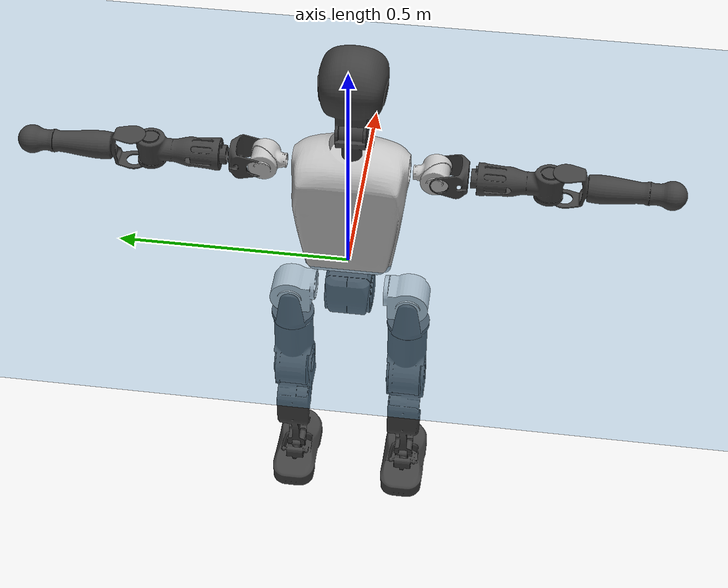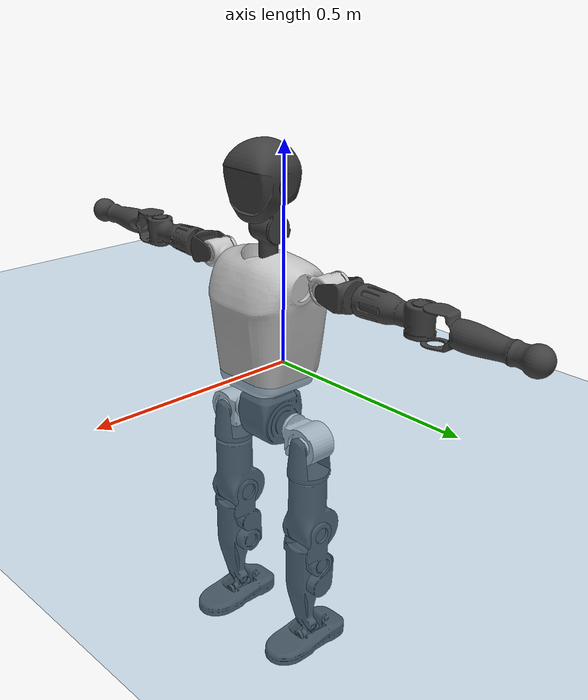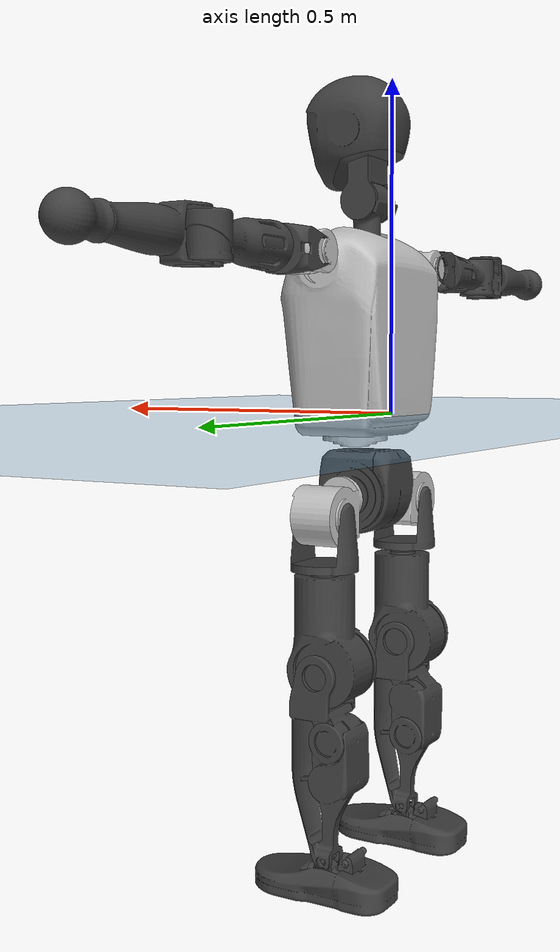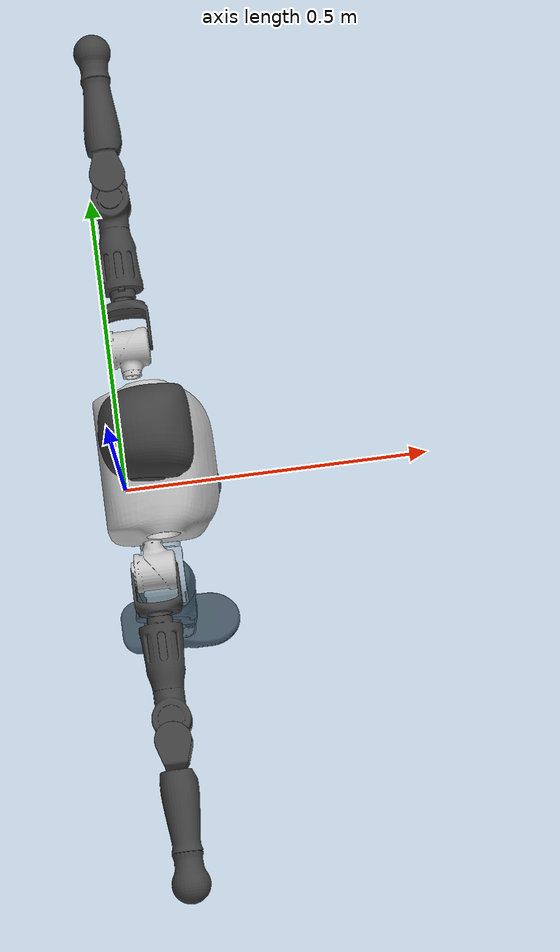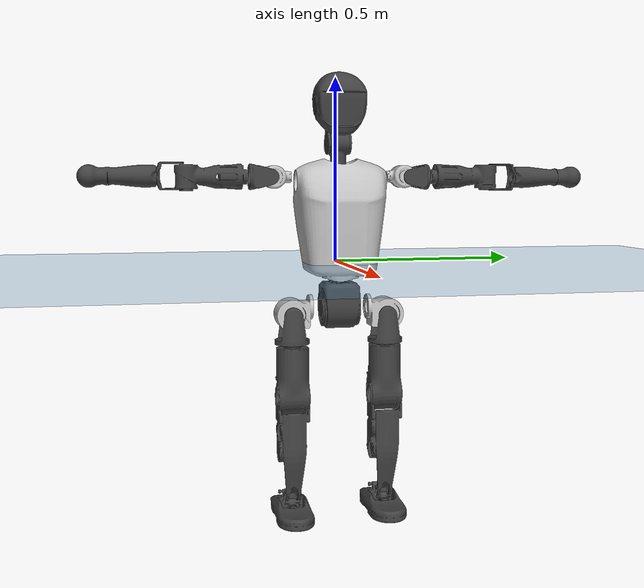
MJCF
<mujoco model="T1">
  <compiler angle="radian" assetdir="assets" balanceinertia="true" inertiafromgeom="false"/>

  <option timestep="0.005" density="1.2" viscosity="2e-05"/>

  <size nkey="1"/>

  <visual>
    <quality shadowsize="8192"/>
    <map shadowclip="0.5"/>
  </visual>

  <default>
    <default class="/">
      <joint armature="0.01" damping="0.01" frictionloss="0.1"/>
      <geom contype="0" conaffinity="0" group="1" solref="-1000 -80"/>
      <site size="0.01 0.005 0.005" group="5"/>
      <general forcelimited="true" biastype="affine" gainprm="25" biasprm="0 -25 -0.6"/>
      <default class="t1">
        <geom rgba="0.25 0.25 0.25 1"/>
        <default class="visual">
          <geom type="mesh" group="2"/>
        </default>
        <default class="collision">
          <geom group="3"/>
        </default>
        <default class="foot">
          <geom size="0.1115 0.05 0.015" type="box" condim="6" group="4" priority="1" solimp="0.015 1 0.015"/>
        </default>
        <default class="reward_collision_sphere">
          <geom group="5" rgba="1 0 0 1"/>
        </default>
      </default>
    </default>
  </default>

  <asset>
    <texture type="skybox" colorspace="auto" name="//unnamed_texture_0" builtin="gradient" rgb1="0.95 0.95 0.95" rgb2="0.95 0.95 0.95" width="100" height="600"/>
    <texture type="2d" colorspace="auto" name="texplane" builtin="checker" rgb1="0.345 0.575 0.748" rgb2="0.345 0.575 0.748" markrgb="1 1 1" width="512" height="512"/>
    <material name="MatPlane" class="/" texture="texplane" texuniform="true" texrepeat="2 2" specular="0.9"/>
    <mesh name="Trunk" class="/" file="Trunk.stl"/>
    <mesh name="H1" class="/" file="H1.stl"/>
    <mesh name="H2" class="/" file="H2.stl"/>
    <mesh name="AL1" class="/" file="AL1.stl"/>
    <mesh name="AL2" class="/" file="AL2.stl"/>
    <mesh name="AL3" class="/" file="AL3.stl"/>
    <mesh name="left_hand_link" class="/" file="left_hand_link.stl"/>
    <mesh name="AR1" class="/" file="AR1.stl"/>
    <mesh name="AR2" class="/" file="AR2.stl"/>
    <mesh name="AR3" class="/" file="AR3.stl"/>
    <mesh name="right_hand_link" class="/" file="right_hand_link.stl"/>
    <mesh name="Waist" class="/" file="Waist.stl"/>
    <mesh name="Hip_Pitch_Left" class="/" file="Hip_Pitch_Left.stl"/>
    <mesh name="Hip_Roll_Left" class="/" file="Hip_Roll_Left.stl"/>
    <mesh name="Hip_Yaw_Left" class="/" file="Hip_Yaw_Left.stl"/>
    <mesh name="Shank_Left" class="/" file="Shank_Left.stl"/>
    <mesh name="Ankle_Cross_Left" class="/" file="Ankle_Cross_Left.stl"/>
    <mesh name="left_foot_link" class="/" file="left_foot_link.stl"/>
    <mesh name="Hip_Pitch_Right" class="/" file="Hip_Pitch_Right.stl"/>
    <mesh name="Hip_Roll_Right" class="/" file="Hip_Roll_Right.stl"/>
    <mesh name="Hip_Yaw_Right" class="/" file="Hip_Yaw_Right.stl"/>
    <mesh name="Shank_Right" class="/" file="Shank_Right.stl"/>
    <mesh name="Ankle_Cross_Right" class="/" file="Ankle_Cross_Right.stl"/>
    <mesh name="right_foot_link" class="/" file="right_foot_link.stl"/>
  </asset>

  <worldbody>
    <geom name="floor" class="/" size="100 100 0.125" type="plane" group="0" material="MatPlane"/>
    <light name="toplight_shadow" class="/" pos="0 0 5" dir="0.0990148 0.0990148 -0.990148" type="directional" ambient="0.04 0.04 0.04" diffuse="0.55 0.55 0.55" specular="0.12 0.12 0.12"/>
    <light name="toplight_fill" class="/" pos="0 0 5" dir="0.0990148 0.0990148 -0.990148" type="directional" castshadow="false" ambient="0.04 0.04 0.04" diffuse="0.3 0.3 0.3" specular="0.08 0.08 0.08"/>
    <body name="trunk" childclass="t1" pos="-0.000115241 0.000636012 0.000832328" quat="1 -7.72802e-05 -0.000117459 9.99199e-05">
      <inertial pos="0.038767 0.00234903 0.11325" quat="0.999942 -0.00636719 -0.0083059 -0.002345" mass="11.7051" diaginertia="0.0153426 0.226065 0.0729772"/>
      <joint name="//unnamed_joint_0" type="free" armature="0" damping="0" frictionloss="0"/>
      <geom name="//unnamed_geom_1" class="visual" rgba="0.76 0.76 0.76 1" mesh="Trunk"/>
      <geom name="//unnamed_geom_2" class="collision" size="0.0748517 0.0998023 0.149703" pos="0.0419954 0 0.126412" type="box"/>
      <geom name="//unnamed_geom_3" class="reward_collision_sphere" size="0.114773" pos="0.0419954 0 0.105344"/>
      <geom name="//unnamed_geom_4" class="reward_collision_sphere" size="0.0149703" pos="0.0419954 0.10546 0"/>
      <geom name="//unnamed_geom_5" class="reward_collision_sphere" size="0.0149703" pos="0.0419954 -0.10546 0"/>
      <geom name="//unnamed_geom_6" class="reward_collision_sphere" size="0.0149703" pos="0.0419954 0.132756 0.189618"/>
      <geom name="//unnamed_geom_7" class="reward_collision_sphere" size="0.0149703" pos="0.0419954 -0.132756 0.189618"/>
      <site name="imu" pos="-0.0037864 -0.000558309 -0.00531038" size="0.00998023"/>
      <camera name="track" pos="0 -2.48142 0" quat="0.707107 0.707107 0 0" mode="trackcom"/>
      <camera name="ego_camera" pos="0.0853907 0 0.442443" quat="-0.5 -0.5 0.5 0.5"/>
      <body name="H1" pos="0.0434603 -0.0026528 0.25801" quat="1 9.33675e-07 -3.46985e-06 4.12051e-06">
        <inertial pos="-0.000878232 0.000804697 0.0612658" quat="0.767622 -0.00329474 -0.00310182 0.640887" mass="0.427617" diaginertia="3.93693e-05 0.000638511 0.000195579"/>
        <joint name="AAHead_yaw" pos="0 0 0" axis="0.00187694 -0.000557129 0.999998" range="-1.56906 1.51883" armature="0.00982986" damping="0.020585" frictionloss="0.0867737"/>
        <geom name="//unnamed_geom_8" class="visual" mesh="H1"/>
        <body name="H2" pos="-0.00145409 0.00049872 0.0625411" quat="1 0.000252488 1.64197e-05 0.00015773">
          <inertial pos="0.00574864 -0.0013074 0.104791" quat="0.987338 0.108464 -0.071675 -0.0908993" mass="0.633183" diaginertia="0.000341906 0.00571064 0.00230464"/>
          <joint name="Head_pitch" pos="0 0 0" axis="0.0050749 -0.999986 -0.00139142" range="-1.23308 0.348821" armature="0.0101002" damping="0.0113656" frictionloss="0.0932502"/>
          <geom name="//unnamed_geom_9" class="visual" mesh="H2"/>
          <geom name="//unnamed_geom_10" class="collision" size="0.0798418" pos="0.00699924 0 0.115878"/>
          <geom name="//unnamed_geom_11" class="reward_collision_sphere" size="0.089822" pos="0.0139985 0 0.105344"/>
        </body>
      </body>
      <body name="AL1" pos="0.0398865 0.13287 0.230671" quat="0.999999 -0.000227082 0.000840526 0.00131725">
        <inertial pos="-0.000474214 0.0555515 3.85807e-05" quat="0.500725 0.488337 -0.504613 0.506129" mass="0.521557" diaginertia="0.000226822 0.00391366 0.000380272"/>
        <joint name="Left_Shoulder_Pitch" pos="0 0 0" axis="5.93804e-05 1 -4.81866e-05" stiffness="0.00396217" range="-3.3312 1.26761" armature="0.0099458" damping="0.0114745" frictionloss="0.0998803"/>
        <geom name="//unnamed_geom_12" class="visual" rgba="0.76 0.76 0.76 1" mesh="AL1"/>
        <body name="AL2" pos="0.000681944 0.0614483 -0.00121368" quat="1 -0.000437113 -0.000114135 0.000346282">
          <inertial pos="0.00535692 0.0496719 0.0005126" quat="0.477024 0.516785 -0.493331 0.511865" mass="0.159781" diaginertia="6.79937e-05 0.00102068 0.000237703"/>
          <joint name="Left_Shoulder_Roll" pos="0 0 0" axis="-0.999995 0.00184966 -0.00261668" stiffness="0.00126553" range="-1.57402 1.73734" armature="0.00932215" damping="0.0109982" frictionloss="0.104728"/>
          <geom name="//unnamed_geom_13" class="visual" mesh="AL2"/>
          <body name="AL3" pos="0.000441091 0.0780413 0.00136111" quat="1 -1.5682e-05 -6.60337e-06 -2.00449e-05">
            <inertial pos="-0.00282401 0.106393 -0.0011381" quat="0.701862 0.712309 0.000869751 -0.00237952" mass="1.06739" diaginertia="0.00225189 0.0382668 0.000817856"/>
            <joint name="Left_Elbow_Pitch" pos="0 0 0" axis="0.000148176 -1 0.000307107" range="-2.28583 2.32108" armature="0.0104864" damping="0.0185774" frictionloss="0.0983853"/>
            <geom name="//unnamed_geom_14" class="visual" mesh="AL3"/>
            <geom name="//unnamed_geom_15" class="collision" size="0.0299407 0.0748517" pos="0 0.0620354 0" quat="0.707105 0.707108 0 0" type="cylinder"/>
            <geom name="//unnamed_geom_16" class="reward_collision_sphere" size="0.0359288"/>
            <body name="left_hand_link" pos="0.000273795 0.185555 -0.00201719" quat="1 0.000287517 3.97244e-05 9.45545e-05">
              <inertial pos="0.000383207 0.13637 0.000904528" quat="0.708569 0.705623 -0.00344809 -0.00379859" mass="0.32278" diaginertia="0.00133361 0.0237965 0.000280716"/>
              <joint name="Left_Elbow_Yaw" pos="0 0 0" axis="-0.00694447 -0.00342581 0.99997" stiffness="0.00954738" range="-2.49663 -0.0122658" armature="0.0101854" damping="0" frictionloss="0.110281"/>
              <geom name="//unnamed_geom_17" class="visual" mesh="left_hand_link"/>
              <geom name="//unnamed_geom_18" class="collision" size="0.0299407 0.087327" pos="0 0.161292 0" quat="0.707105 0.707108 0 0" type="cylinder"/>
              <geom name="//unnamed_geom_19" class="reward_collision_sphere" size="0.0499011"/>
              <geom name="//unnamed_geom_20" class="reward_collision_sphere" size="0.0349308" pos="0 0.136478 0"/>
              <geom name="//unnamed_geom_21" class="reward_collision_sphere" size="0.0349308" pos="0 0.266752 0"/>
            </body>
          </body>
        </body>
      </body>
      <body name="AR1" pos="0.0386291 -0.13117 0.229614" quat="1 0.000324066 0.000438272 -0.000440796">
        <inertial pos="-0.00194423 -0.0558939 -0.00276429" quat="0.501527 0.506573 -0.497294 0.494523" mass="0.539687" diaginertia="0.000228853 0.00378843 0.000385206"/>
        <joint name="Right_Shoulder_Pitch" pos="0 0 0" axis="-0.00072358 -0.999998 -0.00193083" stiffness="0.00763573" range="-1.22638 3.30697" armature="0.00998211" damping="0" frictionloss="0.0863912"/>
        <geom name="//unnamed_geom_22" class="visual" rgba="0.76 0.76 0.76 1" mesh="AR1"/>
        <body name="AR2" pos="-0.00199803 -0.0575946 0.000353658" quat="1 -3.25653e-05 -9.60619e-05 3.49712e-05">
          <inertial pos="0.00189926 -0.0496854 -0.000816058" quat="0.513461 0.476832 -0.514441 0.494307" mass="0.158077" diaginertia="6.74926e-05 0.00100069 0.000230469"/>
          <joint name="Right_Shoulder_Roll" pos="0 0 0" axis="-0.999994 -0.00227319 -0.00246653" stiffness="0.00718287" range="-1.73761 1.57008" armature="0.0100619" damping="0" frictionloss="0.0945158"/>
          <geom name="//unnamed_geom_23" class="visual" mesh="AR2"/>
          <body name="AR3" pos="-0.00140045 -0.0745606 0.000157898" quat="1 0.000329186 9.60494e-05 0.000403422">
            <inertial pos="-0.00124574 -0.105964 0.00095175" quat="0.70666 0.707526 -0.00619933 0.000384454" mass="1.02687" diaginertia="0.00218862 0.0367669 0.000822271"/>
            <joint name="Right_Elbow_Pitch" pos="0 0 0" axis="0.00226518 0.999995 0.00222857" range="-2.26302 2.24811" armature="0.00989952" damping="0.00864684" frictionloss="0.0951759"/>
            <geom name="//unnamed_geom_24" class="visual" mesh="AR3"/>
            <geom name="//unnamed_geom_25" class="collision" size="0.0299407 0.0748517" pos="0 -0.0620354 0" quat="0.707105 0.707108 0 0" type="cylinder"/>
            <geom name="//unnamed_geom_26" class="reward_collision_sphere" size="0.0359288"/>
            <body name="right_hand_link" pos="-0.00149766 -0.180245 0.00229567" quat="1 -0.000122634 -0.000686269 -0.000220008">
              <inertial pos="-0.000273152 -0.134262 0.000209098" quat="0.704128 0.710062 -0.000455141 0.00400317" mass="0.332139" diaginertia="0.00136479 0.0237934 0.00028084"/>
              <joint name="Right_Elbow_Yaw" pos="0 0 0" axis="-0.000952567 -0.00116132 0.999999" range="0.0230703 2.4345" armature="0.00985206" damping="0.00837117" frictionloss="0.113094"/>
              <geom name="//unnamed_geom_27" class="visual" mesh="right_hand_link"/>
              <geom name="//unnamed_geom_28" class="collision" size="0.0299407 0.087327" pos="0 -0.161292 0" quat="0.707105 0.707108 0 0" type="cylinder"/>
              <geom name="//unnamed_geom_29" class="reward_collision_sphere" size="0.0499011"/>
              <geom name="//unnamed_geom_30" class="reward_collision_sphere" size="0.0349308" pos="0 -0.136478 0"/>
              <geom name="//unnamed_geom_31" class="reward_collision_sphere" size="0.0349308" pos="0 -0.266752 0"/>
            </body>
          </body>
        </body>
      </body>
      <body name="Waist" pos="0.0420257 0.000696702 -0.123577" quat="1 -5.22533e-06 2.63077e-06 1.03654e-05">
        <inertial pos="-0.00122024 -0.00152951 0.006743" quat="0.983659 0.000360637 -0.180012 0.00324597" mass="2.47948" diaginertia="0.000862677 0.0153135 0.00603538"/>
        <joint name="Waist" pos="0 0 0" axis="0.00324466 -0.00286914 0.999991" stiffness="0.00186667" range="-1.58356 1.56305" armature="0.0107123" damping="0.0168261" frictionloss="0.1006"/>
        <geom name="//unnamed_geom_32" class="visual" mesh="Waist"/>
        <body name="Hip_Pitch_Left" pos="-0.00051927 0.131191 -0.00201733" quat="1 -0.00032201 5.64805e-06 -9.25261e-05">
          <inertial pos="0.000433424 -0.00718529 -0.0177214" quat="0.975678 0.218877 0.0120562 5.82327e-05" mass="1.04584" diaginertia="0.000302902 0.00435629 0.00161475"/>
          <joint name="Left_Hip_Pitch" pos="0 0 0" axis="-0.00293903 0.999995 0.000609608" stiffness="0.00102619" range="-1.80107 1.6239" armature="0.0112814" damping="0.014816" frictionloss="0.0963669"/>
          <geom name="//unnamed_geom_33" class="visual" rgba="0.76 0.76 0.76 1" mesh="Hip_Pitch_Left"/>
          <body name="Hip_Roll_Left" pos="0.00240924 -0.00113573 -0.0229124" quat="1 0.000347645 0.000127557 0.00014518">
            <inertial pos="0.0007793 -0.000220051 -0.056526" quat="0.700577 -0.00266007 0.00315341 0.713565" mass="0.36668" diaginertia="0.000282085 0.00444675 0.000660552"/>
            <joint name="Left_Hip_Roll" pos="0 0 0" axis="-0.999951 -0.00304621 0.00946085" stiffness="0.00747654" range="-1.56844 0.183333" armature="0.0112785" damping="0.0163287" frictionloss="0.0960981"/>
            <geom name="//unnamed_geom_34" class="visual" mesh="Hip_Roll_Left"/>
            <geom name="//unnamed_geom_35" class="reward_collision_sphere" size="0.0548912"/>
            <body name="Hip_Yaw_Left" pos="-0.00142977 -0.00119997 -0.0840613" quat="1 -0.0001288 0.000102307 -0.000409639">
              <inertial pos="-0.00719855 -0.00126981 -0.0932478" quat="0.69696 -0.0329561 -0.0322778 0.715625" mass="2.17078" diaginertia="0.00428818 0.0715861 0.00333331"/>
              <joint name="Left_Hip_Yaw" pos="0 0 0" axis="-0.00339117 0.00269524 -0.999991" stiffness="0.00326905" range="-1.02422 1.05753" armature="0.00994398" damping="0.00401474" frictionloss="0.101467"/>
              <geom name="//unnamed_geom_36" class="visual" mesh="Hip_Yaw_Left"/>
              <geom name="//unnamed_geom_37" class="collision" size="0.0499011 0.0798418" type="cylinder"/>
              <body name="Shank_Left" pos="-0.00689089 -4.13885e-05 -0.142428" quat="1 4.87672e-05 9.74361e-05 -1.82283e-05">
                <inertial pos="-0.00334562 0.00281391 -0.128546" quat="0.997582 0.00168252 -0.0241182 0.0651522" mass="1.65218" diaginertia="0.0057802 0.10126 0.00236267"/>
                <joint name="Left_Knee_Pitch" pos="0 0 0" axis="-0.00398227 0.999987 -0.00324736" range="0.00129477 2.3409" armature="0.00999674" damping="0.0123024" frictionloss="0.10515"/>
                <geom name="//unnamed_geom_38" class="visual" mesh="Shank_Left"/>
                <geom name="//unnamed_geom_39" class="collision" size="0.0499011 0.0748517" pos="0 0 -0.126412" type="cylinder"/>
                <geom name="//unnamed_geom_40" class="reward_collision_sphere" size="0.0648715"/>
                <body name="Ankle_Cross_Left" pos="-0.000945516 -0.000234117 -0.293031" quat="1 5.31647e-05 4.54583e-06 0.000121674">
                  <inertial pos="-0.00229933 0.00192675 -0.00778897" quat="0.451392 0.546288 0.548588 0.443696" mass="0.0745909" diaginertia="5.02189e-06 7.4356e-05 1.47103e-05"/>
                  <joint name="Left_Ankle_Pitch" pos="0 0 0" axis="-9.46883e-05 1 -8.88751e-05" range="-0.816605 0.332926" armature="0.00980072" damping="0.0147983" frictionloss="0.0950253"/>
                  <geom name="//unnamed_geom_41" class="visual" mesh="Ankle_Cross_Left"/>
                  <body name="left_foot_link" pos="0.000945962 -0.00159921 -0.0106134" quat="1 1.7756e-06 -4.35978e-05 -1.36843e-05">
                    <inertial pos="-0.00217989 -0.000204804 -0.011843" quat="0.00129324 0.624304 0.000408002 0.78118" mass="0.663568" diaginertia="0.000425117 0.00686451 0.00284045"/>
                    <joint name="Left_Ankle_Roll" pos="0 0 0" axis="-1 -0.000309005 0.000254088" range="-0.430123 0.439399" armature="0.0101378" damping="0.0156885" frictionloss="0.099687"/>
                    <geom name="//unnamed_geom_42" class="visual" mesh="left_foot_link"/>
                    <geom name="left_foot" class="foot" size="0.104416 0.0484183 0.0153424" pos="0.00699924 0 -0.0158015"/>
                    <geom name="//unnamed_geom_44" class="reward_collision_sphere" size="0.0518972" pos="0.00699924 0 -0.0158015"/>
                    <geom name="//unnamed_geom_45" class="reward_collision_sphere" size="0.0299407" pos="0.0664928 -0.0285363 -0.0158015"/>
                    <geom name="//unnamed_geom_46" class="reward_collision_sphere" size="0.0299407" pos="-0.0489947 -0.0285363 -0.0158015"/>
                    <site name="left_foot" class="foot" pos="0.00699924 0 -0.0158015" size="0.00998023"/>
                  </body>
                </body>
              </body>
            </body>
          </body>
        </body>
        <body name="Hip_Pitch_Right" pos="-0.000245139 -0.132391 0.000200385" quat="0.999999 0.000562062 -0.000243118 0.000850908">
          <inertial pos="-0.00185845 0.0102822 -0.016338" quat="0.974515 -0.223884 0.0138201 -0.00247984" mass="1.03528" diaginertia="0.000309677 0.00444529 0.00159904"/>
          <joint name="Right_Hip_Pitch" pos="0 0 0" axis="-0.000715477 -0.999999 0.00153066" range="-1.56943 1.74539" armature="0.00923857" damping="0.0108649" frictionloss="0.0991364"/>
          <geom name="//unnamed_geom_47" class="visual" rgba="0.76 0.76 0.76 1" mesh="Hip_Pitch_Right"/>
          <body name="Hip_Roll_Right" pos="0.00226058 0.000573203 -0.0230221" quat="1 -0.00029244 -0.000177045 0.00021572">
            <inertial pos="0.00110467 -0.000972944 -0.0551685" quat="0.709557 -0.0153527 0.00287696 0.704475" mass="0.387556" diaginertia="0.000293597 0.00461724 0.000672186"/>
            <joint name="Right_Hip_Roll" pos="0 0 0" axis="-0.99999 -0.00141626 -0.00426764" stiffness="0.000671897" range="-0.148714 1.59433" armature="0.0100844" damping="0.00879886" frictionloss="0.102175"/>
            <geom name="//unnamed_geom_48" class="visual" mesh="Hip_Roll_Right"/>
            <geom name="//unnamed_geom_49" class="reward_collision_sphere" size="0.0548912"/>
            <body name="Hip_Yaw_Right" pos="0.000759166 0.00100809 -0.0874132" quat="1 -2.13003e-05 -0.000258162 -0.000424885">
              <inertial pos="-0.00462372 -0.00101058 -0.0967104" quat="0.715237 -0.0325486 -0.0374182 0.69712" mass="2.10317" diaginertia="0.00430098 0.0742833 0.00328155"/>
              <joint name="Right_Hip_Yaw" pos="0 0 0" axis="-0.000986132 -0.0154608 -0.99988" stiffness="0.00353226" range="-1.01128 0.987055" armature="0.0111838" damping="0" frictionloss="0.100402"/>
              <geom name="//unnamed_geom_50" class="visual" mesh="Hip_Yaw_Right"/>
              <geom name="//unnamed_geom_51" class="collision" size="0.0499011 0.0798418" type="cylinder"/>
              <body name="Shank_Right" pos="-0.00925239 -0.000542892 -0.139235" quat="1 0.000358986 0.000144519 -9.07368e-05">
                <inertial pos="-0.00409653 -0.00107655 -0.131386" quat="0.99926 -0.000585957 -0.0234765 -0.0304673" mass="1.84143" diaginertia="0.00618199 0.105179 0.00261591"/>
                <joint name="Right_Knee_Pitch" pos="0 0 0" axis="0.0041825 -0.999988 0.00239181" stiffness="0.000284076" range="-2.28813 -0.0131346" armature="0.011279" damping="0.0148341" frictionloss="0.0991515"/>
                <geom name="//unnamed_geom_52" class="visual" mesh="Shank_Right"/>
                <geom name="//unnamed_geom_53" class="collision" size="0.0499011 0.0748517" pos="0 0 -0.126412" type="cylinder"/>
                <geom name="//unnamed_geom_54" class="reward_collision_sphere" size="0.0648715"/>
                <body name="Ankle_Cross_Right" pos="-0.000426309 -0.00146791 -0.295884" quat="1 3.14398e-05 0.000251413 -5.36996e-05">
                  <inertial pos="-0.00242826 -0.00100049 -0.00851157" quat="0.443299 0.551797 0.552338 0.440373" mass="0.0725307" diaginertia="4.99361e-06 7.72479e-05 1.4763e-05"/>
                  <joint name="Right_Ankle_Pitch" pos="0 0 0" axis="-2.57908e-05 -0.999997 0.00228993" range="-0.398629 0.819008" armature="0.0100387" damping="0.0080598" frictionloss="0.104941"/>
                  <geom name="//unnamed_geom_55" class="visual" mesh="Ankle_Cross_Right"/>
                  <body name="right_foot_link" pos="0.00277988 -0.000715131 -0.0136473" quat="1 -1.51358e-05 -5.04459e-05 -7.58484e-05">
                    <inertial pos="-0.00276004 0.000832601 -0.00947147" quat="-0.000753643 0.621655 -0.000323696 0.783291" mass="0.686409" diaginertia="0.000457356 0.00688216 0.0028677"/>
                    <joint name="Right_Ankle_Roll" pos="0 0 0" axis="-0.999983 0.00349055 0.00467179" range="-0.49209 0.439685" armature="0.00988207" damping="0" frictionloss="0.0972099"/>
                    <geom name="//unnamed_geom_56" class="visual" mesh="right_foot_link"/>
                    <geom name="right_foot" class="foot" size="0.102518 0.0456323 0.0151053" pos="0.00699924 0 -0.0158015"/>
                    <geom name="//unnamed_geom_58" class="reward_collision_sphere" size="0.0399209"/>
                    <geom name="//unnamed_geom_59" class="reward_collision_sphere" size="0.0299407" pos="0.00699924 0 -0.0158015"/>
                    <geom name="//unnamed_geom_60" class="reward_collision_sphere" size="0.0299407" pos="0.0664928 0.0285363 -0.0158015"/>
                    <geom name="//unnamed_geom_61" class="reward_collision_sphere" size="0.0299407" pos="-0.0489947 0.0285363 -0.0158015"/>
                    <site name="right_foot" class="foot" pos="0.00699924 0 -0.0158015" size="0.00998023"/>
                  </body>
                </body>
              </body>
            </body>
          </body>
        </body>
      </body>
    </body>
  </worldbody>

  <contact>
    <pair class="/" geom1="floor" geom2="left_foot" name="//unnamed_contact_0"/>
    <pair class="/" geom1="floor" geom2="right_foot" name="//unnamed_contact_1"/>
  </contact>

  <actuator>
    <general name="AAHead_yaw" class="/" joint="AAHead_yaw" forcerange="-6.71816 6.71816" gainprm="23.7853" biasprm="0 -23.7853 -0.592771"/>
    <general name="Head_pitch" class="/" joint="Head_pitch" forcerange="-6.94108 6.94108" gainprm="23.7853" biasprm="0 -23.7853 -0.592771"/>
    <general name="Left_Shoulder_Pitch" class="/" joint="Left_Shoulder_Pitch" forcerange="-17.2503 17.2503" gainprm="23.7853" biasprm="0 -23.7853 -0.592771"/>
    <general name="Left_Shoulder_Roll" class="/" joint="Left_Shoulder_Roll" forcerange="-18.4445 18.4445" gainprm="23.7853" biasprm="0 -23.7853 -0.592771"/>
    <general name="Left_Elbow_Pitch" class="/" joint="Left_Elbow_Pitch" forcerange="-18.1941 18.1941" gainprm="23.7853" biasprm="0 -23.7853 -0.592771"/>
    <general name="Left_Elbow_Yaw" class="/" joint="Left_Elbow_Yaw" forcerange="-18.7107 18.7107" gainprm="23.7853" biasprm="0 -23.7853 -0.592771"/>
    <general name="Right_Shoulder_Pitch" class="/" joint="Right_Shoulder_Pitch" forcerange="-17.5175 17.5175" gainprm="23.7853" biasprm="0 -23.7853 -0.592771"/>
    <general name="Right_Shoulder_Roll" class="/" joint="Right_Shoulder_Roll" forcerange="-17.5424 17.5424" gainprm="23.7853" biasprm="0 -23.7853 -0.592771"/>
    <general name="Right_Elbow_Pitch" class="/" joint="Right_Elbow_Pitch" forcerange="-19.7644 19.7644" gainprm="23.7853" biasprm="0 -23.7853 -0.592771"/>
    <general name="Right_Elbow_Yaw" class="/" joint="Right_Elbow_Yaw" forcerange="-17.3238 17.3238" gainprm="23.7853" biasprm="0 -23.7853 -0.592771"/>
    <general name="Waist" class="/" joint="Waist" forcerange="-29.4715 29.4715" gainprm="23.7853" biasprm="0 -23.7853 -0.592771"/>
    <general name="Left_Hip_Pitch" class="/" joint="Left_Hip_Pitch" forcerange="-45.5848 45.5848" gainprm="23.7853" biasprm="0 -23.7853 -0.592771"/>
    <general name="Left_Hip_Roll" class="/" joint="Left_Hip_Roll" forcerange="-32.169 32.169" gainprm="23.7853" biasprm="0 -23.7853 -0.592771"/>
    <general name="Left_Hip_Yaw" class="/" joint="Left_Hip_Yaw" forcerange="-27.4557 27.4557" gainprm="23.7853" biasprm="0 -23.7853 -0.592771"/>
    <general name="Left_Knee_Pitch" class="/" joint="Left_Knee_Pitch" forcerange="-58.4436 58.4436" gainprm="23.7853" biasprm="0 -23.7853 -0.592771"/>
    <general name="Left_Ankle_Pitch" class="/" joint="Left_Ankle_Pitch" forcerange="-20.1051 20.1051" gainprm="23.7853" biasprm="0 -23.7853 -0.592771"/>
    <general name="Left_Ankle_Roll" class="/" joint="Left_Ankle_Roll" forcerange="-16.3741 16.3741" gainprm="23.7853" biasprm="0 -23.7853 -0.592771"/>
    <general name="Right_Hip_Pitch" class="/" joint="Right_Hip_Pitch" forcerange="-44.9418 44.9418" gainprm="23.7853" biasprm="0 -23.7853 -0.592771"/>
    <general name="Right_Hip_Roll" class="/" joint="Right_Hip_Roll" forcerange="-29.8639 29.8639" gainprm="23.7853" biasprm="0 -23.7853 -0.592771"/>
    <general name="Right_Hip_Yaw" class="/" joint="Right_Hip_Yaw" forcerange="-32.9967 32.9967" gainprm="23.7853" biasprm="0 -23.7853 -0.592771"/>
    <general name="Right_Knee_Pitch" class="/" joint="Right_Knee_Pitch" forcerange="-59.6875 59.6875" gainprm="23.7853" biasprm="0 -23.7853 -0.592771"/>
    <general name="Right_Ankle_Pitch" class="/" joint="Right_Ankle_Pitch" forcerange="-20.6978 20.6978" gainprm="23.7853" biasprm="0 -23.7853 -0.592771"/>
    <general name="Right_Ankle_Roll" class="/" joint="Right_Ankle_Roll" forcerange="-14.4556 14.4556" gainprm="23.7853" biasprm="0 -23.7853 -0.592771"/>
  </actuator>

  <sensor>
    <gyro site="imu" name="imu_angular_velocity"/>
    <velocimeter site="imu" name="imu_linear_velocity"/>
    <framelinvel objtype="site" objname="left_foot" name="left_foot_global_linear_velocity"/>
    <framelinvel objtype="site" objname="right_foot" name="right_foot_global_linear_velocity"/>
  </sensor>

  <keyframe>
    <key name="home" qpos="0 0 0.6385 1 0 0 0 0 0 0 1.4 0 -0.4 0 -1.4 0 0.4 0 -0.4 0 0 0.8 -0.4 0 0.4 0 0 -0.8 0.4 0"/>
  </keyframe>
</mujoco>
